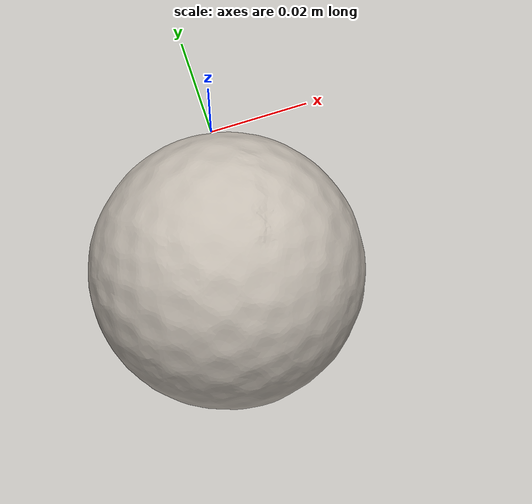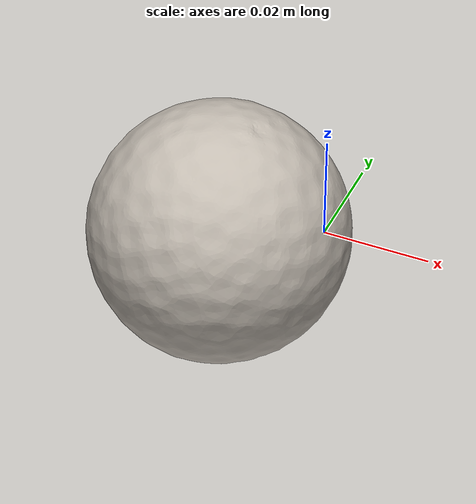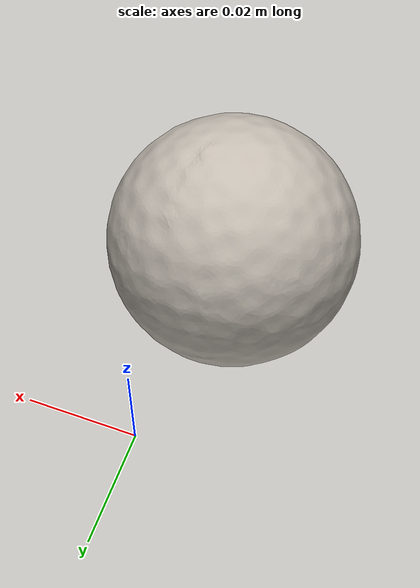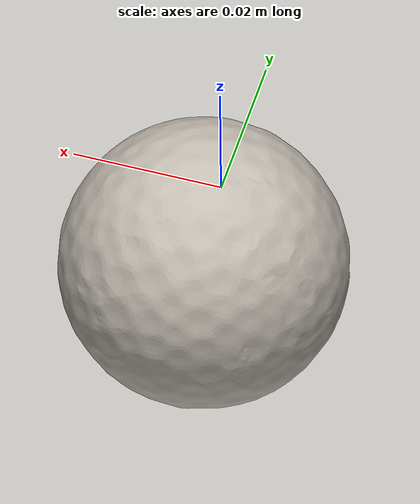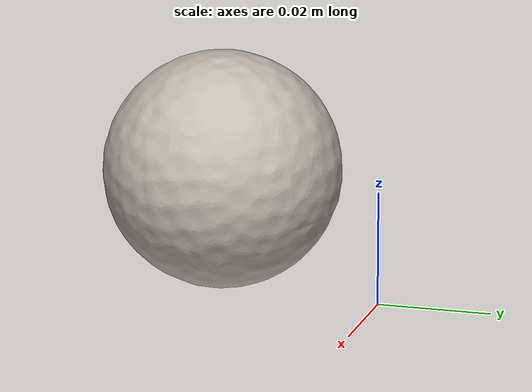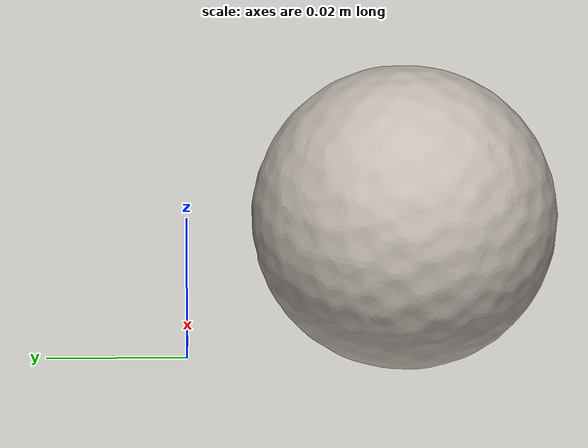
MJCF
<mujoco model="golf_ball">
  <compiler angle="radian" meshdir="assets" texturedir="assets"/>
    <default>
        <default class="ycb_col">
            <geom contype="1" conaffinity="1" group="3" rgba=".4 .5 .6 1"/>
        </default>
        <default class="ycb_viz">
            <geom contype="0" conaffinity="0" type="mesh" mass="0"/>
        </default>
    </default>
  <asset>
    <texture type="2d" name="golf_ball_tex" file="texture_map.png"/>
    <material name="golf_ball_mat" texture="golf_ball_tex" specular="0.5" shininess="0.5"/>
    <mesh file="textured.obj" name="golf_ball"/>
    <mesh file="textured_collision_0.obj" name="golf_ball_collision_0"/>
  </asset>
  <worldbody>
    <geom material="golf_ball_mat" mesh="golf_ball" class="ycb_viz"/>
    <geom mesh="golf_ball_collision_0" class="ycb_col" conaffinity="1" condim="4" friction="0.1 0.1 0.1" mass="0.046" rgba="1 1 1 1" solimp="0.99 0.99 0.01" solref=".001 0.1" type="mesh" group="3"/>
  </worldbody>
</mujoco>
